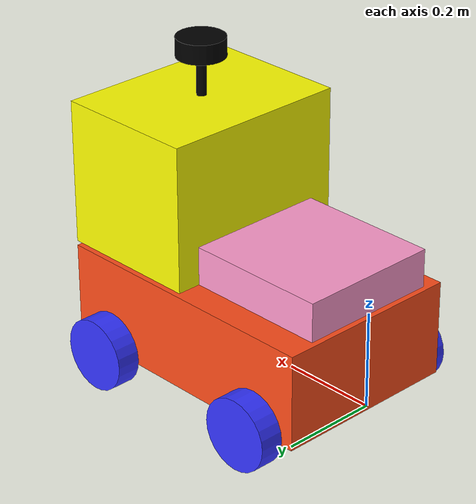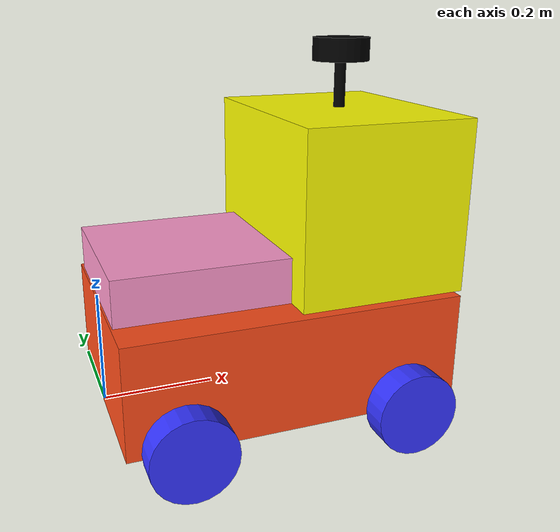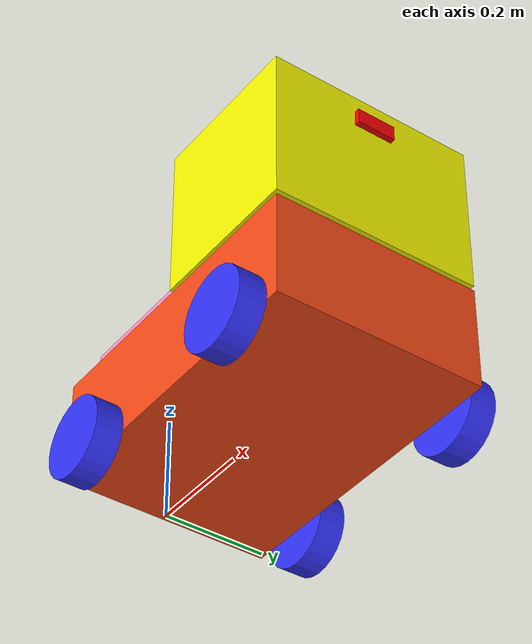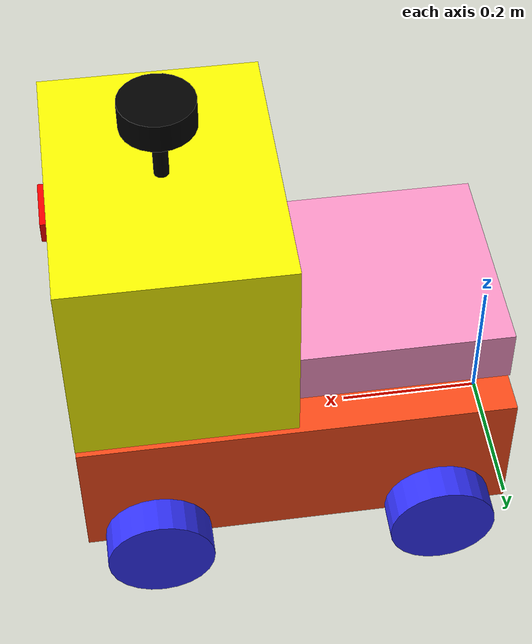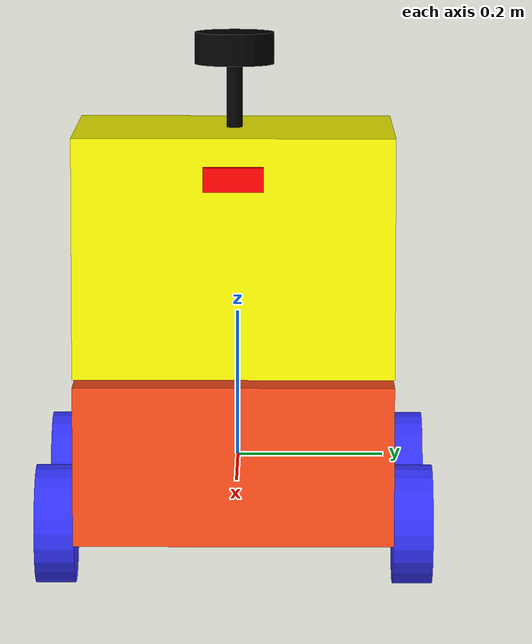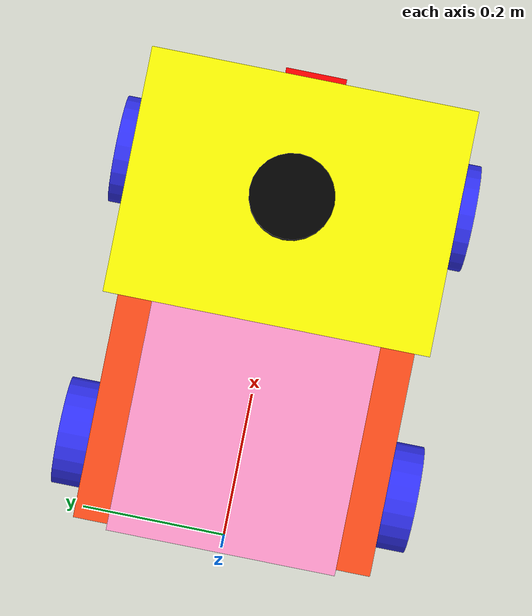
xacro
<?xml version="1.0"?>
<robot xmlns:xacro="http://www.ros.org/wiki/xacro" name="robot">

    <xacro:arg name="use_ros2_control" default="true" />
    <xacro:arg name="sim_mode" default="false" />

    <xacro:include filename="main.xacro" />

    <xacro:include filename="lidar.xacro" />
    <xacro:include filename="depth_camera.xacro" />

</robot>

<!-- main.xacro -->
<robot xmlns:xacro="http://www.ros.org/wiki/xacro">

    <xacro:include filename="inertial_macros.xacro" />

    <xacro:property name="chassis_length" value="0.60" />
    <xacro:property name="chassis_width" value="0.40" />
    <xacro:property name="chassis_height" value="0.20" />
    <xacro:property name="chassis_mass" value="1.0" />
    <xacro:property name="wheel_radius" value="0.075" />
    <xacro:property name="wheel_thickness" value="0.05" />
    <xacro:property name="wheel_mass" value="0.05" />
    <xacro:property name="wheel_offset_x" value="0.5" />
    <xacro:property name="wheel_offset_y" value="0.225" />
    <xacro:property name="wheel_offset_z" value="0.01" />
    <xacro:property name="platform_length" value="0.3" />
    <xacro:property name="platform_width" value="0.3" />
    <xacro:property name="platform_height" value="0.08" />
    <xacro:property name="body_length" value="0.3" />
    <xacro:property name="body_width" value="0.4" />
    <xacro:property name="body_height" value="0.3" />

    <material name="white">
        <color rgba="1 1 1 1" />
    </material>

    <material name="orange">
        <color rgba="1 0.3 0.1 1" />
    </material>

    <material name="blue">
        <color rgba="0.2 0.2 1 1" />
    </material>

    <material name="black">
        <color rgba="0 0 0 1" />
    </material>

    <material name="red">
        <color rgba="1 0 0 1" />
    </material>

    <material name="green">
        <color rgba="0 1 0 1" />
    </material>

    <material name="yellow">
        <color rgba="1 1 0 1" />
    </material>

    <material name="purple">
        <color rgba="0.5 0 0.5 1" />
    </material>

    <material name="cyan">
        <color rgba="0 1 1 1" />
    </material>

    <material name="magenta">
        <color rgba="1 0 1 1" />
    </material>

    <material name="gray">
        <color rgba="0.5 0.5 0.5 1" />
    </material>

    <material name="dark_gray">
        <color rgba="0.25 0.25 0.25 1" />
    </material>

    <material name="light_gray">
        <color rgba="0.75 0.75 0.75 1" />
    </material>

    <material name="brown">
        <color rgba="0.6 0.3 0.1 1" />
    </material>

    <material name="light_blue">
        <color rgba="0.5 0.7 1 1" />
    </material>

    <material name="lime">
        <color rgba="0.7 1 0 1" />
    </material>

    <material name="pink">
        <color rgba="1 0.6 0.8 1" />
    </material>

    <material name="teal">
        <color rgba="0 0.5 0.5 1" />
    </material>

    <material name="navy">
        <color rgba="0 0 0.5 1" />
    </material>

    <!-- BASE LINK -->

    <link name="base_link">

    </link>

    <!-- BASE_FOOTPRINT LINK -->

    <joint name="base_footprint_joint" type="fixed">
        <parent link="base_link" />
        <child link="base_footprint" />
        <origin xyz="0 0 0" rpy="0 0 0" />
    </joint>

    <link name="base_footprint">
    </link>

    <!-- CHASSIS LINK -->

    <joint name="chassis_joint" type="fixed">
        <parent link="base_link" />
        <child link="chassis" />
        <origin xyz="0 0 ${-wheel_offset_z}" />
    </joint>

    <link name="chassis">
        <visual>
            <origin xyz="${chassis_length/2} 0 ${chassis_height/2}" />
            <geometry>
                <box size="${chassis_length} ${chassis_width} ${chassis_height}" />
            </geometry>
            <material name="orange" />
        </visual>
        <collision>
            <origin xyz="${chassis_length/2} 0 ${chassis_height/2}" />
            <geometry>
                <box size="${chassis_length} ${chassis_width} ${chassis_height}" />
            </geometry>
        </collision>
        <xacro:inertial_box mass="0.5" x="${chassis_length}" y="${chassis_width}"
            z="${chassis_height}">
            <origin xyz="${chassis_length/2} 0 ${chassis_height/2}" rpy="0 0 0" />
        </xacro:inertial_box>
    </link>

    <gazebo reference="chassis">
        <material>Gazebo/Orange</material>
    </gazebo>

    <!-- LEFT WHEEL LINK -->

    <joint name="front_left_wheel_joint" type="continuous">
        <parent link="base_link" />
        <child link="front_left_wheel" />
        <origin xyz="${wheel_offset_x}  ${wheel_offset_y} 0" rpy="-${pi/2} 0 0" />
        <axis xyz="0 0 1" />
    </joint>

    <link name="front_left_wheel">
        <visual>
            <geometry>
                <cylinder radius="${wheel_radius}" length="${wheel_thickness}" />
            </geometry>
            <material name="blue" />
        </visual>
        <collision>
            <geometry>
                <sphere radius="${wheel_radius}" />
            </geometry>
        </collision>
        <xacro:inertial_cylinder mass="${wheel_mass}" length="${wheel_thickness}"
            radius="${wheel_radius}">
            <origin xyz="0 0 0" rpy="0 0 0" />
        </xacro:inertial_cylinder>
    </link>

    <gazebo reference="front_left_wheel">
        <material>Gazebo/Blue</material>
        <mu1>0.9</mu1>
        <mu2>0.9</mu2>
        <slip1>0.0</slip1>
        <slip2>0.0</slip2>
    </gazebo>

    <joint name="rear_left_wheel_joint" type="continuous">
        <parent link="base_link" />
        <child link="rear_left_wheel" />
        <origin xyz="${wheel_offset_x-0.4} ${wheel_offset_y} 0" rpy="-${pi/2} 0 0" />
        <axis xyz="0 0 1" />
    </joint>

    <link name="rear_left_wheel">
        <visual>
            <geometry>
                <cylinder radius="${wheel_radius}" length="${wheel_thickness}" />
            </geometry>
            <material name="blue" />
        </visual>
        <collision>
            <geometry>
                <sphere radius="${wheel_radius}" />
            </geometry>
        </collision>
        <xacro:inertial_cylinder mass="${wheel_mass}" length="${wheel_thickness}"
            radius="${wheel_radius}">
            <origin xyz="0 0 0" rpy="0 0 0" />
        </xacro:inertial_cylinder>
    </link>

    <gazebo reference="rear_left_wheel">
        <material>Gazebo/Blue</material>
        <mu1>0.9</mu1>
        <mu2>0.9</mu2>
        <slip1>0.0</slip1>
        <slip2>0.0</slip2>
    </gazebo>

    <!-- RIGHT WHEEL LINK -->

    <joint name="front_right_wheel_joint" type="continuous">
        <parent link="base_link" />
        <child link="front_right_wheel" />
        <origin xyz="${wheel_offset_x} ${-wheel_offset_y} 0" rpy="${pi/2} 0 0" />
        <axis xyz="0 0 1" />
    </joint>

    <link name="front_right_wheel">
        <visual>
            <geometry>
                <cylinder radius="${wheel_radius}" length="${wheel_thickness}" />
            </geometry>
            <material name="blue" />
        </visual>
        <collision>
            <geometry>
                <sphere radius="${wheel_radius}" />
            </geometry>
        </collision>
        <xacro:inertial_cylinder mass="${wheel_mass}" length="${wheel_thickness}"
            radius="${wheel_radius}">
            <origin xyz="0 0 0" rpy="0 0 0" />
        </xacro:inertial_cylinder>
    </link>

    <gazebo reference="front_right_wheel">
        <material>Gazebo/Blue</material>
        <mu1>0.9</mu1>
        <mu2>0.9</mu2>
        <slip1>0.0</slip1>
        <slip2>0.0</slip2>
    </gazebo>

    <joint name="rear_right_wheel_joint" type="continuous">
        <parent link="base_link" />
        <child link="rear_right_wheel" />
        <origin xyz="${wheel_offset_x-0.4} ${-wheel_offset_y} 0" rpy="${pi/2} 0 0" />
        <axis xyz="0 0 1" />
    </joint>

    <link name="rear_right_wheel">
        <visual>
            <geometry>
                <cylinder radius="${wheel_radius}" length="${wheel_thickness}" />
            </geometry>
            <material name="blue" />
        </visual>
        <collision>
            <geometry>
                <sphere radius="${wheel_radius}" />
            </geometry>
        </collision>
        <xacro:inertial_cylinder mass="${wheel_mass}" length="${wheel_thickness}"
            radius="${wheel_radius}">
            <origin xyz="0 0 0" rpy="0 0 0" />
        </xacro:inertial_cylinder>
    </link>

    <gazebo reference="rear_right_wheel">
        <material>Gazebo/Blue</material>
        <mu1>0.9</mu1>
        <mu2>0.9</mu2>
        <slip1>0.0</slip1>
        <slip2>0.0</slip2>
    </gazebo>

    <!-- PL,ATFORM LINK -->

    <joint name="platform_joint" type="fixed">
        <parent link="base_link" />
        <child link="platform" />
        <origin xyz="0 0 ${(chassis_height)}" />
    </joint>

    <link name="platform">
        <visual>
            <origin xyz="${platform_length/2} 0 ${platform_height/2}" />
            <geometry>
                <box size="${platform_length} ${platform_width} ${platform_height}" />
            </geometry>
            <material name="pink" />
        </visual>
        <collision>
            <origin xyz="${platform_length/2} 0 ${platform_height/2}" />
            <geometry>
                <box size="${platform_length} ${platform_width} ${platform_height}" />
            </geometry>
        </collision>
        <xacro:inertial_box mass="0.5" x="${platform_length}" y="${platform_width}"
            z="${platform_height}">
            <origin xyz="${platform_length/2} 0 ${platform_height/2}" rpy="0 0 0" />
        </xacro:inertial_box>
    </link>

    <!-- BODY LINK -->

    <joint name="body_joint" type="fixed">
        <parent link="base_link" />
        <child link="body" />
        <origin xyz="0.3 0 ${(chassis_height)}" />
    </joint>

    <link name="body">
        <visual>
            <origin xyz="${body_length/2} 0 ${body_height/2}" />
            <geometry>
                <box size="${body_length} ${body_width} ${body_height}" />
            </geometry>
            <material name="yellow" />
        </visual>
        <collision>
            <origin xyz="${body_length/2} 0 ${body_height/2}" />
            <geometry>
                <box size="${body_length} ${body_width} ${body_height}" />
            </geometry>
        </collision>
        <xacro:inertial_box mass="0.5" x="${body_length}" y="${body_width}" z="${body_height}">
            <origin xyz="${body_length/2} 0 ${body_height/2}" rpy="0 0 0" />
        </xacro:inertial_box>
    </link>
    <gazebo reference="platform">
        <material>Gazebo/Pink</material>
    </gazebo>

    <gazebo reference="body">
        <material>Gazebo/Yellow</material>
    </gazebo>

    <gazebo>
        <plugin filename="gz-sim-diff-drive-system" name="gz::sim::systems::DiffDrive">
            <topic>cmd_vel</topic>
            <child_frame_id>base_footprint</child_frame_id>
            <odom_topic>odom</odom_topic>
            <left_joint>front_left_wheel_joint</left_joint>
            <right_joint>front_right_wheel_joint</right_joint>
            <left_joint>rear_left_wheel_joint</left_joint>
            <right_joint>rear_right_wheel_joint</right_joint>
            <wheel_separation>${2 * wheel_offset_y}</wheel_separation>
            <wheel_radius>${wheel_radius}</wheel_radius>
            <max_linear_acceleration>1</max_linear_acceleration>
            <min_linear_acceleration>-1</min_linear_acceleration>
            <max_angular_acceleration>2</max_angular_acceleration>
            <min_angular_acceleration>-2</min_angular_acceleration>
            <max_linear_velocity>0.5</max_linear_velocity>
            <min_linear_velocity>-0.5</min_linear_velocity>
            <max_angular_velocity>1</max_angular_velocity>
            <min_angular_velocity>-1</min_angular_velocity>
        </plugin>
    </gazebo>

    <gazebo>
        <plugin filename="gz-sim-joint-state-publisher-system"
            name="gz::sim::systems::JointStatePublisher">
            <topic>joint_states</topic>
            <update_rate>50</update_rate>
            <joint_name>front_left_wheel_joint</joint_name>
            <joint_name>front_right_wheel_joint</joint_name>
            <joint_name>rear_left_wheel_joint</joint_name>
            <joint_name>rear_right_wheel_joint</joint_name>
        </plugin>
    </gazebo>

</robot>

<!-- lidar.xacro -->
<robot xmlns:xacro="http://www.ros.org/wiki/xacro" >

    <joint name="laser_joint" type="fixed">
        <parent link="body"/>
        <child link="laser_frame"/>
        <origin xyz="0.15 0 0.4" rpy="0 0 0"/>
    </joint>

    <link name="laser_frame">
        <visual>
            <geometry>
                <cylinder radius="0.05" length="0.04"/>
            </geometry>
            <material name="black"/>
        </visual>
        <visual>
            <origin xyz="0 0 -0.05"/>
            <geometry>
                <cylinder radius="0.01" length="0.1"/>
            </geometry>
            <material name="black"/>
        </visual>
        <collision>
            <geometry>
                <cylinder radius="0.05" length="0.04"/>
            </geometry>
        </collision>
        <xacro:inertial_cylinder mass="0.1" length="0.04" radius="0.05">
            <origin xyz="0 0 0" rpy="0 0 0"/>
        </xacro:inertial_cylinder>
    </link>

    <gazebo reference="laser_frame">
        <material>Gazebo/Black</material>

        <sensor name="laser" type="gpu_lidar">
            <pose> 0 0 0 0 0 0 </pose>
            <visualize>false</visualize>
            <update_rate>10</update_rate>
            <lidar>
                <scan>
                    <horizontal>
                        <samples>360</samples>
                        <min_angle>-3.14</min_angle>
                        <max_angle>3.14</max_angle>
                    </horizontal>
                </scan>
                <range>
                    <min>0.3</min>
                    <max>12</max>
                </range>
            </lidar>
            <topic>scan</topic>
            <gz_frame_id>laser_frame</gz_frame_id>
        </sensor>
    </gazebo>

</robot>

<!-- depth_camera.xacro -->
<robot xmlns:xacro="http://www.ros.org/wiki/xacro">

  <!-- Fixed joint to mount camera on robot body -->
  <joint name="camera_joint" type="fixed">
    <parent link="body"/>
    <child link="camera_link"/>
    <origin xyz="0.3 0 0.25" rpy="0 0 0"/>
  </joint>

  <!-- Camera housing link -->
  <link name="camera_link">
    <visual>
      <geometry>
        <box size="0.02 0.075 0.03"/>
      </geometry>
      <material name="red">
        <color rgba="1 0 0 1"/>
      </material>
    </visual>
    <collision>
      <geometry>
        <box size="0.02 0.075 0.03"/>
      </geometry>
    </collision>
    <inertial>
      <mass value="0.1"/>
      <inertia ixx="1e-4" iyy="1e-4" izz="1e-4" ixy="0" ixz="0" iyz="0"/>
    </inertial>
  </link>

  <!-- Optical frame (REP-103: Z forward, X right, Y down) -->
  <joint name="camera_optical_joint" type="fixed">
    <parent link="camera_link"/>
    <child link="camera_optical_frame"/>
    <origin xyz="0 0 0" rpy="${-pi/2} 0 ${-pi/2}"/>
  </joint>

  <link name="camera_optical_frame"/>

  <gazebo reference="camera_link">
    <material>Gazebo/Black</material>

    <sensor name="camera" type="camera">
        <pose> 0 0 0 0 0 0 </pose>
        <visualize>true</visualize>
        <update_rate>10</update_rate>
        <camera>
            <camera_info_topic>camera/camera_info</camera_info_topic>
            <horizontal_fov>1.089</horizontal_fov>
            <image>
                <format>R8G8B8</format>
                <width>640</width>
                <height>480</height>
            </image>
            <clip>
                <near>0.05</near>
                <far>8.0</far>
            </clip>
        </camera>
        <topic>camera/image_raw</topic>
        <gz_frame_id>camera_link_optical</gz_frame_id>
    </sensor>
</gazebo>

</robot>
